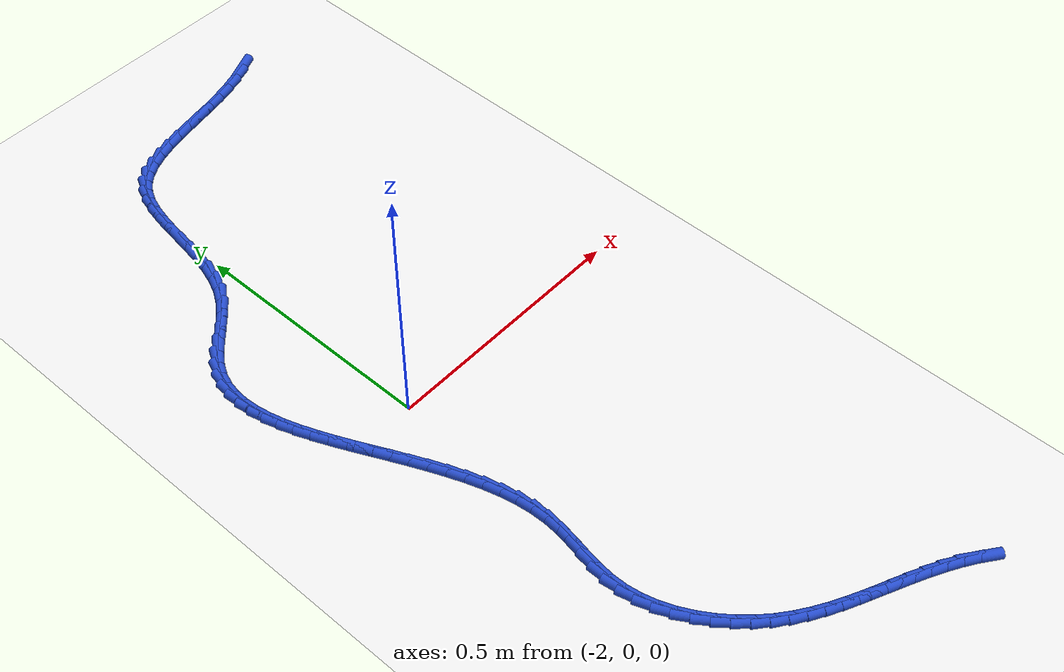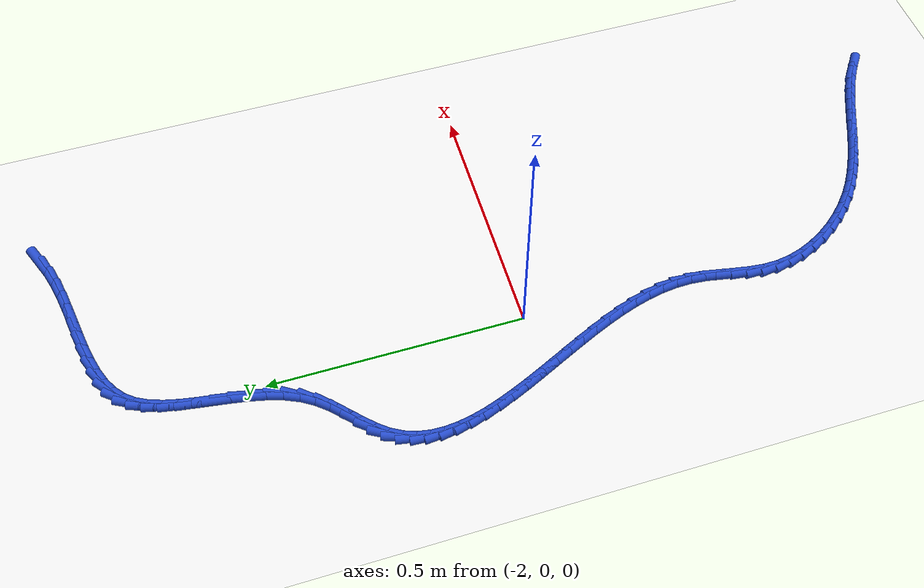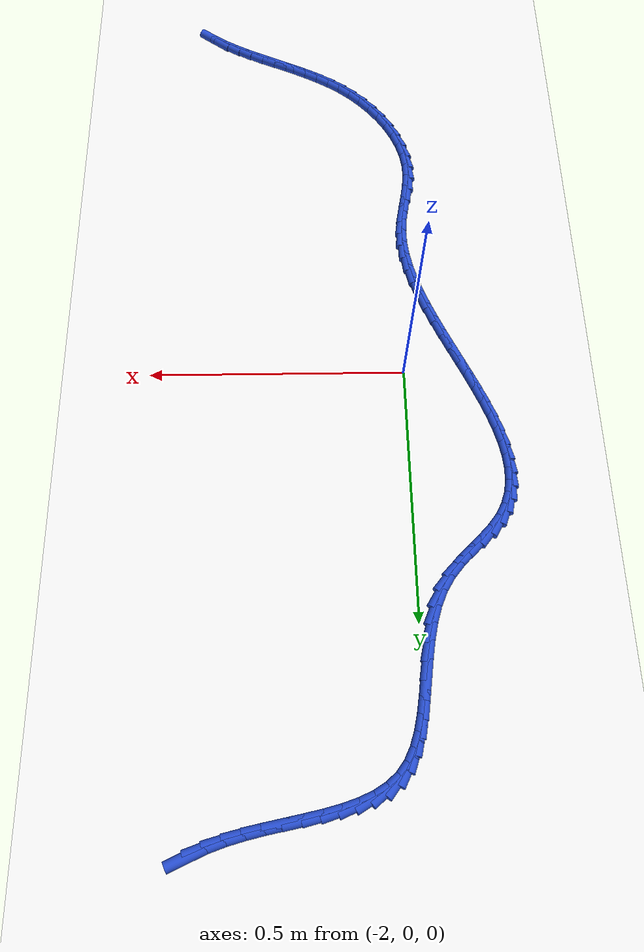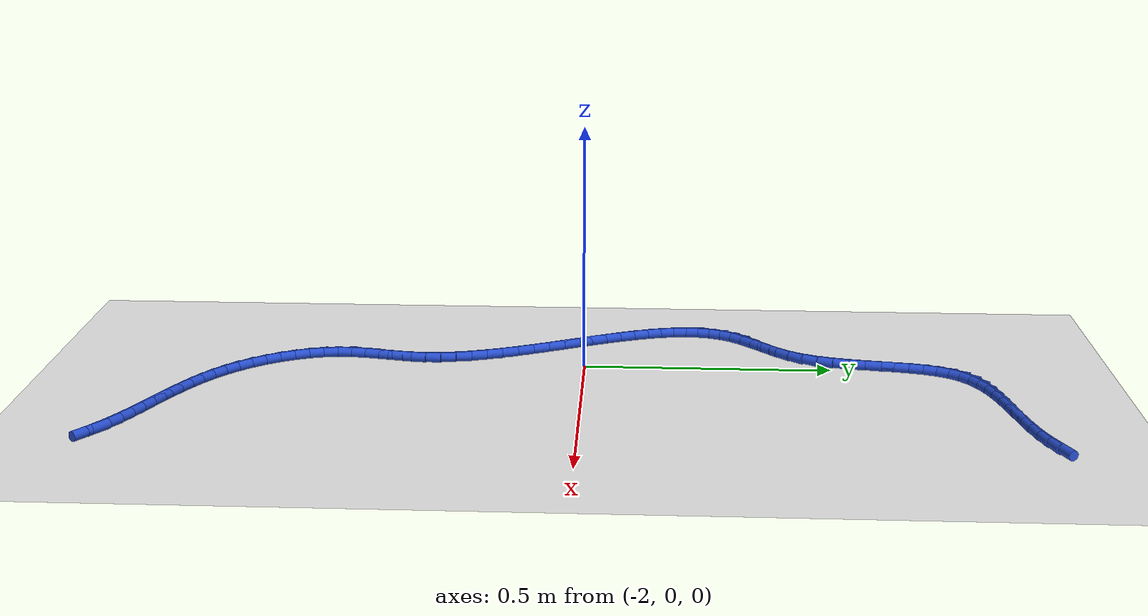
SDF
<sdf version="1.6">
 <world name="default">
  <model name="ground_plane">
   <static>1</static>
   <link name="link">
    <collision name="collision">
     <geometry><plane><normal>0 0 1</normal><size>100 100</size></plane></geometry>
     <surface><friction><ode><mu>100</mu><mu2>50</mu2></ode></friction></surface>
    </collision>
    <visual name="visual">
     <cast_shadows>0</cast_shadows>
     <geometry><plane><normal>0 0 1</normal><size>100 100</size></plane></geometry>
     <material>
      <script><uri>file://media/materials/scripts/gazebo.material</uri><name>Gazebo/WhiteGlow</name></script>
     </material>
    </visual>
   </link>
  </model>
  <model name="line">
   <link name="link_76">
    <pose>-1.610381626551684 0.869418647580772 0.01 0 1.57 0.4160574497705836</pose>
    <collision name="collision">
     <geometry><cylinder><radius>0.01</radius><length>0.08</length></cylinder></geometry>
    </collision>
    <visual name="visual">
     <material>
      <script><name>Gazebo/Blue</name><uri>file://media/materials/scripts/gazebo.material</uri></script>
     </material>
     <geometry><cylinder><radius>0.01</radius><length>0.08</length></cylinder></geometry>
    </visual>
   </link>
   <link name="link_77">
    <pose>-1.6390522995078827 0.8567504524883015 0.01 0 1.57 0.3292026111108646</pose>
    <collision name="collision">
     <geometry><cylinder><radius>0.01</radius><length>0.08</length></cylinder></geometry>
    </collision>
    <visual name="visual">
     <material>
      <script><name>Gazebo/Blue</name><uri>file://media/materials/scripts/gazebo.material</uri></script>
     </material>
     <geometry><cylinder><radius>0.01</radius><length>0.08</length></cylinder></geometry>
    </visual>
   </link>
   <link name="link_78">
    <pose>-1.6693729146719765 0.8463918943097849 0.01 0 1.57 0.2653858996348108</pose>
    <collision name="collision">
     <geometry><cylinder><radius>0.01</radius><length>0.08</length></cylinder></geometry>
    </collision>
    <visual name="visual">
     <material>
      <script><name>Gazebo/Blue</name><uri>file://media/materials/scripts/gazebo.material</uri></script>
     </material>
     <geometry><cylinder><radius>0.01</radius><length>0.08</length></cylinder></geometry>
    </visual>
   </link>
   <link name="link_79">
    <pose>-1.7008571939319461 0.8378345642287214 0.01 0 1.57 0.2230253182194177</pose>
    <collision name="collision">
     <geometry><cylinder><radius>0.01</radius><length>0.08</length></cylinder></geometry>
    </collision>
    <visual name="visual">
     <material>
      <script><name>Gazebo/Blue</name><uri>file://media/materials/scripts/gazebo.material</uri></script>
     </material>
     <geometry><cylinder><radius>0.01</radius><length>0.08</length></cylinder></geometry>
    </visual>
   </link>
   <link name="link_80">
    <pose>-1.7329995700499943 0.8305447317303409 0.01 0 1.57 0.20028443890292583</pose>
    <collision name="collision">
     <geometry><cylinder><radius>0.01</radius><length>0.08</length></cylinder></geometry>
    </collision>
    <visual name="visual">
     <material>
      <script><name>Gazebo/Blue</name><uri>file://media/materials/scripts/gazebo.material</uri></script>
     </material>
     <geometry><cylinder><radius>0.01</radius><length>0.08</length></cylinder></geometry>
    </visual>
   </link>
   <link name="link_81">
    <pose>-1.7652944757883235 0.8239886662998727 0.01 0 1.57 0.19642170429190142</pose>
    <collision name="collision">
     <geometry><cylinder><radius>0.01</radius><length>0.08</length></cylinder></geometry>
    </collision>
    <visual name="visual">
     <material>
      <script><name>Gazebo/Blue</name><uri>file://media/materials/scripts/gazebo.material</uri></script>
     </material>
     <geometry><cylinder><radius>0.01</radius><length>0.08</length></cylinder></geometry>
    </visual>
   </link>
   <link name="link_82">
    <pose>-1.7972363439091374 0.8176326374225465 0.01 0 1.57 0.21198590512749693</pose>
    <collision name="collision">
     <geometry><cylinder><radius>0.01</radius><length>0.08</length></cylinder></geometry>
    </collision>
    <visual name="visual">
     <material>
      <script><name>Gazebo/Blue</name><uri>file://media/materials/scripts/gazebo.material</uri></script>
     </material>
     <geometry><cylinder><radius>0.01</radius><length>0.08</length></cylinder></geometry>
    </visual>
   </link>
   <link name="link_83">
    <pose>-1.8283196071746393 0.810942914583592 0.01 0 1.57 0.24900841222616585</pose>
    <collision name="collision">
     <geometry><cylinder><radius>0.01</radius><length>0.08</length></cylinder></geometry>
    </collision>
    <visual name="visual">
     <material>
      <script><name>Gazebo/Blue</name><uri>file://media/materials/scripts/gazebo.material</uri></script>
     </material>
     <geometry><cylinder><radius>0.01</radius><length>0.08</length></cylinder></geometry>
    </visual>
   </link>
   <link name="link_84">
    <pose>-1.8580386983470323 0.8033857672682391 0.01 0 1.57 0.31121712831345894</pose>
    <collision name="collision">
     <geometry><cylinder><radius>0.01</radius><length>0.08</length></cylinder></geometry>
    </collision>
    <visual name="visual">
     <material>
      <script><name>Gazebo/Blue</name><uri>file://media/materials/scripts/gazebo.material</uri></script>
     </material>
     <geometry><cylinder><radius>0.01</radius><length>0.08</length></cylinder></geometry>
    </visual>
   </link>
   <link name="link_85">
    <pose>-1.8858880501885191 0.794427464961717 0.01 0 1.57 0.4040869388895871</pose>
    <collision name="collision">
     <geometry><cylinder><radius>0.01</radius><length>0.08</length></cylinder></geometry>
    </collision>
    <visual name="visual">
     <material>
      <script><name>Gazebo/Blue</name><uri>file://media/materials/scripts/gazebo.material</uri></script>
     </material>
     <geometry><cylinder><radius>0.01</radius><length>0.08</length></cylinder></geometry>
    </visual>
   </link>
   <link name="link_86">
    <pose>-1.911362095461303 0.7835342771492555 0.01 0 1.57 0.5340786039586223</pose>
    <collision name="collision">
     <geometry><cylinder><radius>0.01</radius><length>0.08</length></cylinder></geometry>
    </collision>
    <visual name="visual">
     <material>
      <script><name>Gazebo/Blue</name><uri>file://media/materials/scripts/gazebo.material</uri></script>
     </material>
     <geometry><cylinder><radius>0.01</radius><length>0.08</length></cylinder></geometry>
    </visual>
   </link>
   <link name="link_87">
    <pose>-1.9339552669275868 0.7701724733160844 0.01 0 1.57 0.7056545061145715</pose>
    <collision name="collision">
     <geometry><cylinder><radius>0.01</radius><length>0.08</length></cylinder></geometry>
    </collision>
    <visual name="visual">
     <material>
      <script><name>Gazebo/Blue</name><uri>file://media/materials/scripts/gazebo.material</uri></script>
     </material>
     <geometry><cylinder><radius>0.01</radius><length>0.08</length></cylinder></geometry>
    </visual>
   </link>
   <link name="link_88">
    <pose>-1.9531619973495746 0.7538083229474327 0.01 0 1.57 0.9127495470192307</pose>
    <collision name="collision">
     <geometry><cylinder><radius>0.01</radius><length>0.08</length></cylinder></geometry>
    </collision>
    <visual name="visual">
     <material>
      <script><name>Gazebo/Blue</name><uri>file://media/materials/scripts/gazebo.material</uri></script>
     </material>
     <geometry><cylinder><radius>0.01</radius><length>0.08</length></cylinder></geometry>
    </visual>
   </link>
   <link name="link_89">
    <pose>-1.968516982214645 0.7339436610591785 0.01 0 1.57 1.1051524793292276</pose>
    <collision name="collision">
     <geometry><cylinder><radius>0.01</radius><length>0.08</length></cylinder></geometry>
    </collision>
    <visual name="visual">
     <material>
      <script><name>Gazebo/Blue</name><uri>file://media/materials/scripts/gazebo.material</uri></script>
     </material>
     <geometry><cylinder><radius>0.01</radius><length>0.08</length></cylinder></geometry>
    </visual>
   </link>
   <link name="link_90">
    <pose>-1.9802151821890444 0.710663558932283 0.01 0 1.57 1.2468206795940786</pose>
    <collision name="collision">
     <geometry><cylinder><radius>0.01</radius><length>0.08</length></cylinder></geometry>
    </collision>
    <visual name="visual">
     <material>
      <script><name>Gazebo/Blue</name><uri>file://media/materials/scripts/gazebo.material</uri></script>
     </material>
     <geometry><cylinder><radius>0.01</radius><length>0.08</length></cylinder></geometry>
    </visual>
   </link>
   <link name="link_91">
    <pose>-1.98899112545584 0.6845297074747115 0.01 0 1.57 1.342413181206498</pose>
    <collision name="collision">
     <geometry><cylinder><radius>0.01</radius><length>0.08</length></cylinder></geometry>
    </collision>
    <visual name="visual">
     <material>
      <script><name>Gazebo/Blue</name><uri>file://media/materials/scripts/gazebo.material</uri></script>
     </material>
     <geometry><cylinder><radius>0.01</radius><length>0.08</length></cylinder></geometry>
    </visual>
   </link>
   <link name="link_92">
    <pose>-1.9955951545864004 0.656117767019232 0.01 0 1.57 1.4003731339392245</pose>
    <collision name="collision">
     <geometry><cylinder><radius>0.01</radius><length>0.08</length></cylinder></geometry>
    </collision>
    <visual name="visual">
     <material>
      <script><name>Gazebo/Blue</name><uri>file://media/materials/scripts/gazebo.material</uri></script>
     </material>
     <geometry><cylinder><radius>0.01</radius><length>0.08</length></cylinder></geometry>
    </visual>
   </link>
   <link name="link_93">
    <pose>-2.0007776121520933 0.6260033978986121 0.01 0 1.57 1.4273873388629754</pose>
    <collision name="collision">
     <geometry><cylinder><radius>0.01</radius><length>0.08</length></cylinder></geometry>
    </collision>
    <visual name="visual">
     <material>
      <script><name>Gazebo/Blue</name><uri>file://media/materials/scripts/gazebo.material</uri></script>
     </material>
     <geometry><cylinder><radius>0.01</radius><length>0.08</length></cylinder></geometry>
    </visual>
   </link>
   <link name="link_94">
    <pose>-2.0052888407242855 0.5947622604456196 0.01 0 1.57 1.4274017145459206</pose>
    <collision name="collision">
     <geometry><cylinder><radius>0.01</radius><length>0.08</length></cylinder></geometry>
    </collision>
    <visual name="visual">
     <material>
      <script><name>Gazebo/Blue</name><uri>file://media/materials/scripts/gazebo.material</uri></script>
     </material>
     <geometry><cylinder><radius>0.01</radius><length>0.08</length></cylinder></geometry>
    </visual>
   </link>
   <link name="link_95">
    <pose>-2.0098791828743456 0.5629700149930228 0.01 0 1.57 1.4018160496670866</pose>
    <collision name="collision">
     <geometry><cylinder><radius>0.01</radius><length>0.08</length></cylinder></geometry>
    </collision>
    <visual name="visual">
     <material>
      <script><name>Gazebo/Blue</name><uri>file://media/materials/scripts/gazebo.material</uri></script>
     </material>
     <geometry><cylinder><radius>0.01</radius><length>0.08</length></cylinder></geometry>
    </visual>
   </link>
   <link name="link_96">
    <pose>-2.015298981173641 0.5312023218735885 0.01 0 1.57 1.3498815523250658</pose>
    <collision name="collision">
     <geometry><cylinder><radius>0.01</radius><length>0.08</length></cylinder></geometry>
    </collision>
    <visual name="visual">
     <material>
      <script><name>Gazebo/Blue</name><uri>file://media/materials/scripts/gazebo.material</uri></script>
     </material>
     <geometry><cylinder><radius>0.01</radius><length>0.08</length></cylinder></geometry>
    </visual>
   </link>
   <link name="link_97">
    <pose>-2.0222985781935385 0.5000348414200855 0.01 0 1.57 1.2692071948485864</pose>
    <collision name="collision">
     <geometry><cylinder><radius>0.01</radius><length>0.08</length></cylinder></geometry>
    </collision>
    <visual name="visual">
     <material>
      <script><name>Gazebo/Blue</name><uri>file://media/materials/scripts/gazebo.material</uri></script>
     </material>
     <geometry><cylinder><radius>0.01</radius><length>0.08</length></cylinder></geometry>
    </visual>
   </link>
   <link name="link_98">
    <pose>-2.0316283165054063 0.47004323396528086 0.01 0 1.57 1.156746727476643</pose>
    <collision name="collision">
     <geometry><cylinder><radius>0.01</radius><length>0.08</length></cylinder></geometry>
    </collision>
    <visual name="visual">
     <material>
      <script><name>Gazebo/Blue</name><uri>file://media/materials/scripts/gazebo.material</uri></script>
     </material>
     <geometry><cylinder><radius>0.01</radius><length>0.08</length></cylinder></geometry>
    </visual>
   </link>
   <link name="link_99">
    <pose>-2.044038538680612 0.44180315984194257 0.01 0 1.57 1.0118088175532138</pose>
    <collision name="collision">
     <geometry><cylinder><radius>0.01</radius><length>0.08</length></cylinder></geometry>
    </collision>
    <visual name="visual">
     <material>
      <script><name>Gazebo/Blue</name><uri>file://media/materials/scripts/gazebo.material</uri></script>
     </material>
     <geometry><cylinder><radius>0.01</radius><length>0.08</length></cylinder></geometry>
    </visual>
   </link>
   <link name="link_100">
    <pose>-2.060255977314044 0.4158776561360481 0.01 0 1.57 0.8736276150421285</pose>
    <collision name="collision">
     <geometry><cylinder><radius>0.01</radius><length>0.08</length></cylinder></geometry>
    </collision>
    <visual name="visual">
     <material>
      <script><name>Gazebo/Blue</name><uri>file://media/materials/scripts/gazebo.material</uri></script>
     </material>
     <geometry><cylinder><radius>0.01</radius><length>0.08</length></cylinder></geometry>
    </visual>
   </link>
   <link name="link_101">
    <pose>-2.0800060223074435 0.3922943847311214 0.01 0 1.57 0.7917996279238951</pose>
    <collision name="collision">
     <geometry><cylinder><radius>0.01</radius><length>0.08</length></cylinder></geometry>
    </collision>
    <visual name="visual">
     <material>
      <script><name>Gazebo/Blue</name><uri>file://media/materials/scripts/gazebo.material</uri></script>
     </material>
     <geometry><cylinder><radius>0.01</radius><length>0.08</length></cylinder></geometry>
    </visual>
   </link>
   <link name="link_102">
    <pose>-2.1016628013503937 0.3703585452753776 0.01 0 1.57 0.7665609897976486</pose>
    <collision name="collision">
     <geometry><cylinder><radius>0.01</radius><length>0.08</length></cylinder></geometry>
    </collision>
    <visual name="visual">
     <material>
      <script><name>Gazebo/Blue</name><uri>file://media/materials/scripts/gazebo.material</uri></script>
     </material>
     <geometry><cylinder><radius>0.01</radius><length>0.08</length></cylinder></geometry>
    </visual>
   </link>
   <link name="link_103">
    <pose>-2.1235048718415253 0.3493242400612339 0.01 0 1.57 0.7993041522759713</pose>
    <collision name="collision">
     <geometry><cylinder><radius>0.01</radius><length>0.08</length></cylinder></geometry>
    </collision>
    <visual name="visual">
     <material>
      <script><name>Gazebo/Blue</name><uri>file://media/materials/scripts/gazebo.material</uri></script>
     </material>
     <geometry><cylinder><radius>0.01</radius><length>0.08</length></cylinder></geometry>
    </visual>
   </link>
   <link name="link_104">
    <pose>-2.1438107911794693 0.32844557138110864 0.01 0 1.57 0.8995972974934121</pose>
    <collision name="collision">
     <geometry><cylinder><radius>0.01</radius><length>0.08</length></cylinder></geometry>
    </collision>
    <visual name="visual">
     <material>
      <script><name>Gazebo/Blue</name><uri>file://media/materials/scripts/gazebo.material</uri></script>
     </material>
     <geometry><cylinder><radius>0.01</radius><length>0.08</length></cylinder></geometry>
    </visual>
   </link>
   <link name="link_105">
    <pose>-2.1608609931029683 0.3069773799152577 0.01 0 1.57 1.0608342699751587</pose>
    <collision name="collision">
     <geometry><cylinder><radius>0.01</radius><length>0.08</length></cylinder></geometry>
    </collision>
    <visual name="visual">
     <material>
      <script><name>Gazebo/Blue</name><uri>file://media/materials/scripts/gazebo.material</uri></script>
     </material>
     <geometry><cylinder><radius>0.01</radius><length>0.08</length></cylinder></geometry>
    </visual>
   </link>
   <link name="link_106">
    <pose>-2.1734923662414656 0.28439348558001515 0.01 0 1.57 1.230968654318998</pose>
    <collision name="collision">
     <geometry><cylinder><radius>0.01</radius><length>0.08</length></cylinder></geometry>
    </collision>
    <visual name="visual">
     <material>
      <script><name>Gazebo/Blue</name><uri>file://media/materials/scripts/gazebo.material</uri></script>
     </material>
     <geometry><cylinder><radius>0.01</radius><length>0.08</length></cylinder></geometry>
    </visual>
   </link>
   <link name="link_107">
    <pose>-2.1818721332052013 0.2606912287490074 0.01 0 1.57 1.3913102008723335</pose>
    <collision name="collision">
     <geometry><cylinder><radius>0.01</radius><length>0.08</length></cylinder></geometry>
    </collision>
    <visual name="visual">
     <material>
      <script><name>Gazebo/Blue</name><uri>file://media/materials/scripts/gazebo.material</uri></script>
     </material>
     <geometry><cylinder><radius>0.01</radius><length>0.08</length></cylinder></geometry>
    </visual>
   </link>
   <link name="link_108">
    <pose>-2.1863621401193662 0.2359445391283263 0.01 0 1.57 1.5334032665790536</pose>
    <collision name="collision">
     <geometry><cylinder><radius>0.01</radius><length>0.08</length></cylinder></geometry>
    </collision>
    <visual name="visual">
     <material>
      <script><name>Gazebo/Blue</name><uri>file://media/materials/scripts/gazebo.material</uri></script>
     </material>
     <geometry><cylinder><radius>0.01</radius><length>0.08</length></cylinder></geometry>
    </visual>
   </link>
   <link name="link_109">
    <pose>-2.18732423310915 0.21022734642406518 0.01 0 1.57 -1.4881715261154582</pose>
    <collision name="collision">
     <geometry><cylinder><radius>0.01</radius><length>0.08</length></cylinder></geometry>
    </collision>
    <visual name="visual">
     <material>
      <script><name>Gazebo/Blue</name><uri>file://media/materials/scripts/gazebo.material</uri></script>
     </material>
     <geometry><cylinder><radius>0.01</radius><length>0.08</length></cylinder></geometry>
    </visual>
   </link>
   <link name="link_110">
    <pose>-2.185120258299743 0.1836135803423158 0.01 0 1.57 -1.390245809695707</pose>
    <collision name="collision">
     <geometry><cylinder><radius>0.01</radius><length>0.08</length></cylinder></geometry>
    </collision>
    <visual name="visual">
     <material>
      <script><name>Gazebo/Blue</name><uri>file://media/materials/scripts/gazebo.material</uri></script>
     </material>
     <geometry><cylinder><radius>0.01</radius><length>0.08</length></cylinder></geometry>
    </visual>
   </link>
   <link name="link_111">
    <pose>-2.180112061816335 0.15617717058917122 0.01 0 1.57 -1.3123635287264857</pose>
    <collision name="collision">
     <geometry><cylinder><radius>0.01</radius><length>0.08</length></cylinder></geometry>
    </collision>
    <visual name="visual">
     <material>
      <script><name>Gazebo/Blue</name><uri>file://media/materials/scripts/gazebo.material</uri></script>
     </material>
     <geometry><cylinder><radius>0.01</radius><length>0.08</length></cylinder></geometry>
    </visual>
   </link>
   <link name="link_112">
    <pose>-2.1726614897841157 0.12799204687072321 0.01 0 1.57 -1.251819683924428</pose>
    <collision name="collision">
     <geometry><cylinder><radius>0.01</radius><length>0.08</length></cylinder></geometry>
    </collision>
    <visual name="visual">
     <material>
      <script><name>Gazebo/Blue</name><uri>file://media/materials/scripts/gazebo.material</uri></script>
     </material>
     <geometry><cylinder><radius>0.01</radius><length>0.08</length></cylinder></geometry>
    </visual>
   </link>
   <link name="link_113">
    <pose>-2.1631303883282755 0.09913213889306499 0.01 0 1.57 -1.206028038028856</pose>
    <collision name="collision">
     <geometry><cylinder><radius>0.01</radius><length>0.08</length></cylinder></geometry>
    </collision>
    <visual name="visual">
     <material>
      <script><name>Gazebo/Blue</name><uri>file://media/materials/scripts/gazebo.material</uri></script>
     </material>
     <geometry><cylinder><radius>0.01</radius><length>0.08</length></cylinder></geometry>
    </visual>
   </link>
   <link name="link_114">
    <pose>-2.1518806035740043 0.06967137636228822 0.01 0 1.57 -1.172834083479508</pose>
    <collision name="collision">
     <geometry><cylinder><radius>0.01</radius><length>0.08</length></cylinder></geometry>
    </collision>
    <visual name="visual">
     <material>
      <script><name>Gazebo/Blue</name><uri>file://media/materials/scripts/gazebo.material</uri></script>
     </material>
     <geometry><cylinder><radius>0.01</radius><length>0.08</length></cylinder></geometry>
    </visual>
   </link>
   <link name="link_115">
    <pose>-2.1392739816464923 0.03968368898448606 0.01 0 1.57 -1.1505870999985257</pose>
    <collision name="collision">
     <geometry><cylinder><radius>0.01</radius><length>0.08</length></cylinder></geometry>
    </collision>
    <visual name="visual">
     <material>
      <script><name>Gazebo/Blue</name><uri>file://media/materials/scripts/gazebo.material</uri></script>
     </material>
     <geometry><cylinder><radius>0.01</radius><length>0.08</length></cylinder></geometry>
    </visual>
   </link>
   <link name="link_116">
    <pose>-2.1256723686709296 0.009243006465750672 0.01 0 1.57 -1.138114174586652</pose>
    <collision name="collision">
     <geometry><cylinder><radius>0.01</radius><length>0.08</length></cylinder></geometry>
    </collision>
    <visual name="visual">
     <material>
      <script><name>Gazebo/Blue</name><uri>file://media/materials/scripts/gazebo.material</uri></script>
     </material>
     <geometry><cylinder><radius>0.01</radius><length>0.08</length></cylinder></geometry>
    </visual>
   </link>
   <link name="link_117">
    <pose>-2.1114376107725055 -0.021576741487826345 0.01 0 1.57 -1.1346676319872697</pose>
    <collision name="collision">
     <geometry><cylinder><radius>0.01</radius><length>0.08</length></cylinder></geometry>
    </collision>
    <visual name="visual">
     <material>
      <script><name>Gazebo/Blue</name><uri>file://media/materials/scripts/gazebo.material</uri></script>
     </material>
     <geometry><cylinder><radius>0.01</radius><length>0.08</length></cylinder></geometry>
    </visual>
   </link>
   <link name="link_118">
    <pose>-2.096931554076411 -0.05270162517015092 0.01 0 1.57 -1.1398758672429703</pose>
    <collision name="collision">
     <geometry><cylinder><radius>0.01</radius><length>0.08</length></cylinder></geometry>
    </collision>
    <visual name="visual">
     <material>
      <script><name>Gazebo/Blue</name><uri>file://media/materials/scripts/gazebo.material</uri></script>
     </material>
     <geometry><cylinder><radius>0.01</radius><length>0.08</length></cylinder></geometry>
    </visual>
   </link>
   <link name="link_119">
    <pose>-2.0825160447078352 -0.08405771487513142 0.01 0 1.57 -1.1537073480467723</pose>
    <collision name="collision">
     <geometry><cylinder><radius>0.01</radius><length>0.08</length></cylinder></geometry>
    </collision>
    <visual name="visual">
     <material>
      <script><name>Gazebo/Blue</name><uri>file://media/materials/scripts/gazebo.material</uri></script>
     </material>
     <geometry><cylinder><radius>0.01</radius><length>0.08</length></cylinder></geometry>
    </visual>
   </link>
   <link name="link_120">
    <pose>-2.0685529287919686 -0.11557108089667535 0.01 0 1.57 -1.176448104165616</pose>
    <collision name="collision">
     <geometry><cylinder><radius>0.01</radius><length>0.08</length></cylinder></geometry>
    </collision>
    <visual name="visual">
     <material>
      <script><name>Gazebo/Blue</name><uri>file://media/materials/scripts/gazebo.material</uri></script>
     </material>
     <geometry><cylinder><radius>0.01</radius><length>0.08</length></cylinder></geometry>
    </visual>
   </link>
   <link name="link_121">
    <pose>-2.055404052454002 -0.14716779352869042 0.01 0 1.57 -1.20868756205056</pose>
    <collision name="collision">
     <geometry><cylinder><radius>0.01</radius><length>0.08</length></cylinder></geometry>
    </collision>
    <visual name="visual">
     <material>
      <script><name>Gazebo/Blue</name><uri>file://media/materials/scripts/gazebo.material</uri></script>
     </material>
     <geometry><cylinder><radius>0.01</radius><length>0.08</length></cylinder></geometry>
    </visual>
   </link>
   <link name="link_122">
    <pose>-2.0434312618191233 -0.17877392306508474 0.01 0 1.57 -1.2513020123487382</pose>
    <collision name="collision">
     <geometry><cylinder><radius>0.01</radius><length>0.08</length></cylinder></geometry>
    </collision>
    <visual name="visual">
     <material>
      <script><name>Gazebo/Blue</name><uri>file://media/materials/scripts/gazebo.material</uri></script>
     </material>
     <geometry><cylinder><radius>0.01</radius><length>0.08</length></cylinder></geometry>
    </visual>
   </link>
   <link name="link_123">
    <pose>-2.0329964030125245 -0.2103155397997645 0.01 0 1.57 -1.3054165099515076</pose>
    <collision name="collision">
     <geometry><cylinder><radius>0.01</radius><length>0.08</length></cylinder></geometry>
    </collision>
    <visual name="visual">
     <material>
      <script><name>Gazebo/Blue</name><uri>file://media/materials/scripts/gazebo.material</uri></script>
     </material>
     <geometry><cylinder><radius>0.01</radius><length>0.08</length></cylinder></geometry>
    </visual>
   </link>
   <link name="link_124">
    <pose>-2.024461322159395 -0.2417187140266379 0.01 0 1.57 -1.3723129006718198</pose>
    <collision name="collision">
     <geometry><cylinder><radius>0.01</radius><length>0.08</length></cylinder></geometry>
    </collision>
    <visual name="visual">
     <material>
      <script><name>Gazebo/Blue</name><uri>file://media/materials/scripts/gazebo.material</uri></script>
     </material>
     <geometry><cylinder><radius>0.01</radius><length>0.08</length></cylinder></geometry>
    </visual>
   </link>
   <link name="link_125">
    <pose>-2.018187865384924 -0.27290951603961244 0.01 0 1.57 -1.4532355789772466</pose>
    <collision name="collision">
     <geometry><cylinder><radius>0.01</radius><length>0.08</length></cylinder></geometry>
    </collision>
    <visual name="visual">
     <material>
      <script><name>Gazebo/Blue</name><uri>file://media/materials/scripts/gazebo.material</uri></script>
     </material>
     <geometry><cylinder><radius>0.01</radius><length>0.08</length></cylinder></geometry>
    </visual>
   </link>
   <link name="link_126">
    <pose>-2.014537878814303 -0.3038140161325966 0.01 0 1.57 -1.5490388780282924</pose>
    <collision name="collision">
     <geometry><cylinder><radius>0.01</radius><length>0.08</length></cylinder></geometry>
    </collision>
    <visual name="visual">
     <material>
      <script><name>Gazebo/Blue</name><uri>file://media/materials/scripts/gazebo.material</uri></script>
     </material>
     <geometry><cylinder><radius>0.01</radius><length>0.08</length></cylinder></geometry>
    </visual>
   </link>
   <link name="link_127">
    <pose>-2.0138732085727207 -0.33435828459949635 0.01 0 1.57 1.4879412334746311</pose>
    <collision name="collision">
     <geometry><cylinder><radius>0.01</radius><length>0.08</length></cylinder></geometry>
    </collision>
    <visual name="visual">
     <material>
      <script><name>Gazebo/Blue</name><uri>file://media/materials/scripts/gazebo.material</uri></script>
     </material>
     <geometry><cylinder><radius>0.01</radius><length>0.08</length></cylinder></geometry>
    </visual>
   </link>
   <link name="link_128">
    <pose>-2.0163752117029934 -0.36448648817760765 0.01 0 1.57 1.413448651037013</pose>
    <collision name="collision">
     <geometry><cylinder><radius>0.01</radius><length>0.08</length></cylinder></geometry>
    </collision>
    <visual name="visual">
     <material>
      <script><name>Gazebo/Blue</name><uri>file://media/materials/scripts/gazebo.material</uri></script>
     </material>
     <geometry><cylinder><radius>0.01</radius><length>0.08</length></cylinder></geometry>
    </visual>
   </link>
   <link name="link_129">
    <pose>-2.021098383746955 -0.39425577653421834 0.01 0 1.57 1.3844193007355319</pose>
    <collision name="collision">
     <geometry><cylinder><radius>0.01</radius><length>0.08</length></cylinder></geometry>
    </collision>
    <visual name="visual">
     <material>
      <script><name>Gazebo/Blue</name><uri>file://media/materials/scripts/gazebo.material</uri></script>
     </material>
     <geometry><cylinder><radius>0.01</radius><length>0.08</length></cylinder></geometry>
    </visual>
   </link>
   <link name="link_130">
    <pose>-2.0266631474244963 -0.4237668209399455 0.01 0 1.57 1.4012224600039882</pose>
    <collision name="collision">
     <geometry><cylinder><radius>0.01</radius><length>0.08</length></cylinder></geometry>
    </collision>
    <visual name="visual">
     <material>
      <script><name>Gazebo/Blue</name><uri>file://media/materials/scripts/gazebo.material</uri></script>
     </material>
     <geometry><cylinder><radius>0.01</radius><length>0.08</length></cylinder></geometry>
    </visual>
   </link>
   <link name="link_131">
    <pose>-2.031689010680451 -0.4531203843838358 0.01 0 1.57 1.4651567488404986</pose>
    <collision name="collision">
     <geometry><cylinder><radius>0.01</radius><length>0.08</length></cylinder></geometry>
    </collision>
    <visual name="visual">
     <material>
      <script><name>Gazebo/Blue</name><uri>file://media/materials/scripts/gazebo.material</uri></script>
     </material>
     <geometry><cylinder><radius>0.01</radius><length>0.08</length></cylinder></geometry>
    </visual>
   </link>
   <link name="link_132">
    <pose>-2.034795481459654 -0.482417229854934 0.01 0 1.57 -1.5647191571487842</pose>
    <collision name="collision">
     <geometry><cylinder><radius>0.01</radius><length>0.08</length></cylinder></geometry>
    </collision>
    <visual name="visual">
     <material>
      <script><name>Gazebo/Blue</name><uri>file://media/materials/scripts/gazebo.material</uri></script>
     </material>
     <geometry><cylinder><radius>0.01</radius><length>0.08</length></cylinder></geometry>
    </visual>
   </link>
   <link name="link_133">
    <pose>-2.034617190677978 -0.51175466770422 0.01 0 1.57 -1.4305812504263742</pose>
    <collision name="collision">
     <geometry><cylinder><radius>0.01</radius><length>0.08</length></cylinder></geometry>
    </collision>
    <visual name="visual">
     <material>
      <script><name>Gazebo/Blue</name><uri>file://media/materials/scripts/gazebo.material</uri></script>
     </material>
     <geometry><cylinder><radius>0.01</radius><length>0.08</length></cylinder></geometry>
    </visual>
   </link>
   <link name="link_134">
    <pose>-2.030479253871937 -0.5410723677317912 0.01 0 1.57 -1.3078464190400807</pose>
    <collision name="collision">
     <geometry><cylinder><radius>0.01</radius><length>0.08</length></cylinder></geometry>
    </collision>
    <visual name="visual">
     <material>
      <script><name>Gazebo/Blue</name><uri>file://media/materials/scripts/gazebo.material</uri></script>
     </material>
     <geometry><cylinder><radius>0.01</radius><length>0.08</length></cylinder></geometry>
    </visual>
   </link>
   <link name="link_135">
    <pose>-2.022668065137845 -0.5700905357885316 0.01 0 1.57 -1.1976556644727863</pose>
    <collision name="collision">
     <geometry><cylinder><radius>0.01</radius><length>0.08</length></cylinder></geometry>
    </collision>
    <visual name="visual">
     <material>
      <script><name>Gazebo/Blue</name><uri>file://media/materials/scripts/gazebo.material</uri></script>
     </material>
     <geometry><cylinder><radius>0.01</radius><length>0.08</length></cylinder></geometry>
    </visual>
   </link>
   <link name="link_136">
    <pose>-2.0115411658105558 -0.5985131345107129 0.01 0 1.57 -1.0979057071160543</pose>
    <collision name="collision">
     <geometry><cylinder><radius>0.01</radius><length>0.08</length></cylinder></geometry>
    </collision>
    <visual name="visual">
     <material>
      <script><name>Gazebo/Blue</name><uri>file://media/materials/scripts/gazebo.material</uri></script>
     </material>
     <geometry><cylinder><radius>0.01</radius><length>0.08</length></cylinder></geometry>
    </visual>
   </link>
   <link name="link_137">
    <pose>-1.9974560972249256 -0.6260441265346092 0.01 0 1.57 -1.0061842321665582</pose>
    <collision name="collision">
     <geometry><cylinder><radius>0.01</radius><length>0.08</length></cylinder></geometry>
    </collision>
    <visual name="visual">
     <material>
      <script><name>Gazebo/Blue</name><uri>file://media/materials/scripts/gazebo.material</uri></script>
     </material>
     <geometry><cylinder><radius>0.01</radius><length>0.08</length></cylinder></geometry>
    </visual>
   </link>
   <link name="link_138">
    <pose>-1.9807704007158102 -0.6523874744964941 0.01 0 1.57 -0.9200229335295614</pose>
    <collision name="collision">
     <geometry><cylinder><radius>0.01</radius><length>0.08</length></cylinder></geometry>
    </collision>
    <visual name="visual">
     <material>
      <script><name>Gazebo/Blue</name><uri>file://media/materials/scripts/gazebo.material</uri></script>
     </material>
     <geometry><cylinder><radius>0.01</radius><length>0.08</length></cylinder></geometry>
    </visual>
   </link>
   <link name="link_139">
    <pose>-1.9618416176180655 -0.6772471410326414 0.01 0 1.57 -0.8369677716842499</pose>
    <collision name="collision">
     <geometry><cylinder><radius>0.01</radius><length>0.08</length></cylinder></geometry>
    </collision>
    <visual name="visual">
     <material>
      <script><name>Gazebo/Blue</name><uri>file://media/materials/scripts/gazebo.material</uri></script>
     </material>
     <geometry><cylinder><radius>0.01</radius><length>0.08</length></cylinder></geometry>
    </visual>
   </link>
   <link name="link_140">
    <pose>-1.941027289266546 -0.7003270887793247 0.01 0 1.57 -0.7545428753804098</pose>
    <collision name="collision">
     <geometry><cylinder><radius>0.01</radius><length>0.08</length></cylinder></geometry>
    </collision>
    <visual name="visual">
     <material>
      <script><name>Gazebo/Blue</name><uri>file://media/materials/scripts/gazebo.material</uri></script>
     </material>
     <geometry><cylinder><radius>0.01</radius><length>0.08</length></cylinder></geometry>
    </visual>
   </link>
   <link name="link_141">
    <pose>-1.9186848618558798 -0.7213316090241667 0.01 0 1.57 -0.6733225970767254</pose>
    <collision name="collision">
     <geometry><cylinder><radius>0.01</radius><length>0.08</length></cylinder></geometry>
    </collision>
    <visual name="visual">
     <material>
      <script><name>Gazebo/Blue</name><uri>file://media/materials/scripts/gazebo.material</uri></script>
     </material>
     <geometry><cylinder><radius>0.01</radius><length>0.08</length></cylinder></geometry>
    </visual>
   </link>
   <link name="link_142">
    <pose>-1.8951256912720142 -0.7401242069072893 0.01 0 1.57 -0.6010972963331818</pose>
    <collision name="collision">
     <geometry><cylinder><radius>0.01</radius><length>0.08</length></cylinder></geometry>
    </collision>
    <visual name="visual">
     <material>
      <script><name>Gazebo/Blue</name><uri>file://media/materials/scripts/gazebo.material</uri></script>
     </material>
     <geometry><cylinder><radius>0.01</radius><length>0.08</length></cylinder></geometry>
    </visual>
   </link>
   <link name="link_143">
    <pose>-1.8705410878466453 -0.7569830716035687 0.01 0 1.57 -0.5406265628694104</pose>
    <collision name="collision">
     <geometry><cylinder><radius>0.01</radius><length>0.08</length></cylinder></geometry>
    </collision>
    <visual name="visual">
     <material>
      <script><name>Gazebo/Blue</name><uri>file://media/materials/scripts/gazebo.material</uri></script>
     </material>
     <geometry><cylinder><radius>0.01</radius><length>0.08</length></cylinder></geometry>
    </visual>
   </link>
   <link name="link_144">
    <pose>-1.8451030655766538 -0.7722530493334299 0.01 0 1.57 -0.4928018442516438</pose>
    <collision name="collision">
     <geometry><cylinder><radius>0.01</radius><length>0.08</length></cylinder></geometry>
    </collision>
    <visual name="visual">
     <material>
      <script><name>Gazebo/Blue</name><uri>file://media/materials/scripts/gazebo.material</uri></script>
     </material>
     <geometry><cylinder><radius>0.01</radius><length>0.08</length></cylinder></geometry>
    </visual>
   </link>
   <link name="link_145">
    <pose>-1.8189836384589222 -0.786278986317296 0.01 0 1.57 -0.457993732867202</pose>
    <collision name="collision">
     <geometry><cylinder><radius>0.01</radius><length>0.08</length></cylinder></geometry>
    </collision>
    <visual name="visual">
     <material>
      <script><name>Gazebo/Blue</name><uri>file://media/materials/scripts/gazebo.material</uri></script>
     </material>
     <geometry><cylinder><radius>0.01</radius><length>0.08</length></cylinder></geometry>
    </visual>
   </link>
   <link name="link_146">
    <pose>-1.79235482049033 -0.7994057287755916 0.01 0 1.57 -0.43626685206156124</pose>
    <collision name="collision">
     <geometry><cylinder><radius>0.01</radius><length>0.08</length></cylinder></geometry>
    </collision>
    <visual name="visual">
     <material>
      <script><name>Gazebo/Blue</name><uri>file://media/materials/scripts/gazebo.material</uri></script>
     </material>
     <geometry><cylinder><radius>0.01</radius><length>0.08</length></cylinder></geometry>
    </visual>
   </link>
   <link name="link_147">
    <pose>-1.7653886256677604 -0.8119781229287414 0.01 0 1.57 -0.4275546645585865</pose>
    <collision name="collision">
     <geometry><cylinder><radius>0.01</radius><length>0.08</length></cylinder></geometry>
    </collision>
    <visual name="visual">
     <material>
      <script><name>Gazebo/Blue</name><uri>file://media/materials/scripts/gazebo.material</uri></script>
     </material>
     <geometry><cylinder><radius>0.01</radius><length>0.08</length></cylinder></geometry>
    </visual>
   </link>
   <link name="link_148">
    <pose>-1.738257067988093 -0.8243410149971695 0.01 0 1.57 -0.4317708248231341</pose>
    <collision name="collision">
     <geometry><cylinder><radius>0.01</radius><length>0.08</length></cylinder></geometry>
    </collision>
    <visual name="visual">
     <material>
      <script><name>Gazebo/Blue</name><uri>file://media/materials/scripts/gazebo.material</uri></script>
     </material>
     <geometry><cylinder><radius>0.01</radius><length>0.08</length></cylinder></geometry>
    </visual>
   </link>
   <link name="link_149">
    <pose>-1.7111321614482105 -0.8368392512012998 0.01 0 1.57 -0.4488531923108417</pose>
    <collision name="collision">
     <geometry><cylinder><radius>0.01</radius><length>0.08</length></cylinder></geometry>
    </collision>
    <visual name="visual">
     <material>
      <script><name>Gazebo/Blue</name><uri>file://media/materials/scripts/gazebo.material</uri></script>
     </material>
     <geometry><cylinder><radius>0.01</radius><length>0.08</length></cylinder></geometry>
    </visual>
   </link>
   <link name="link_150">
    <pose>-1.6841859200449931 -0.8498176777615566 0.01 0 1.57 -0.47874266699172413</pose>
    <collision name="collision">
     <geometry><cylinder><radius>0.01</radius><length>0.08</length></cylinder></geometry>
    </collision>
    <visual name="visual">
     <material>
      <script><name>Gazebo/Blue</name><uri>file://media/materials/scripts/gazebo.material</uri></script>
     </material>
     <geometry><cylinder><radius>0.01</radius><length>0.08</length></cylinder></geometry>
    </visual>
   </link>
   <link name="link_151">
    <pose>-1.6575903577753228 -0.8636211408983642 0.01 0 1.57 -0.5212993184799767</pose>
    <collision name="collision">
     <geometry><cylinder><radius>0.01</radius><length>0.08</length></cylinder></geometry>
    </collision>
    <visual name="visual">
     <material>
      <script><name>Gazebo/Blue</name><uri>file://media/materials/scripts/gazebo.material</uri></script>
     </material>
     <geometry><cylinder><radius>0.01</radius><length>0.08</length></cylinder></geometry>
    </visual>
   </link>
   <link name="link_152">
    <pose>-1.63151748863608 -0.8785944868321467 0.01 0 1.57 -0.576161056067183</pose>
    <collision name="collision">
     <geometry><cylinder><radius>0.01</radius><length>0.08</length></cylinder></geometry>
    </collision>
    <visual name="visual">
     <material>
      <script><name>Gazebo/Blue</name><uri>file://media/materials/scripts/gazebo.material</uri></script>
     </material>
     <geometry><cylinder><radius>0.01</radius><length>0.08</length></cylinder></geometry>
    </visual>
   </link>
   <link name="link_153">
    <pose>-1.6061393266241448 -0.8950825617833287 0.01 0 1.57 -0.6400257709017765</pose>
    <collision name="collision">
     <geometry><cylinder><radius>0.01</radius><length>0.08</length></cylinder></geometry>
    </collision>
    <visual name="visual">
     <material>
      <script><name>Gazebo/Blue</name><uri>file://media/materials/scripts/gazebo.material</uri></script>
     </material>
     <geometry><cylinder><radius>0.01</radius><length>0.08</length></cylinder></geometry>
    </visual>
   </link>
  </model>
 </world>
</sdf>
